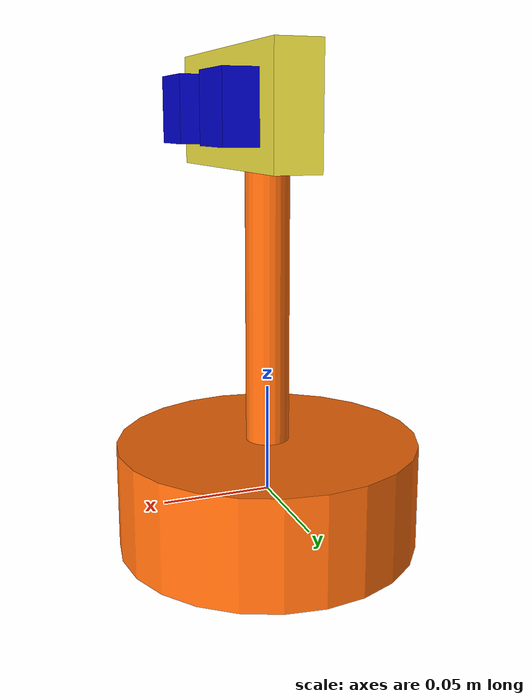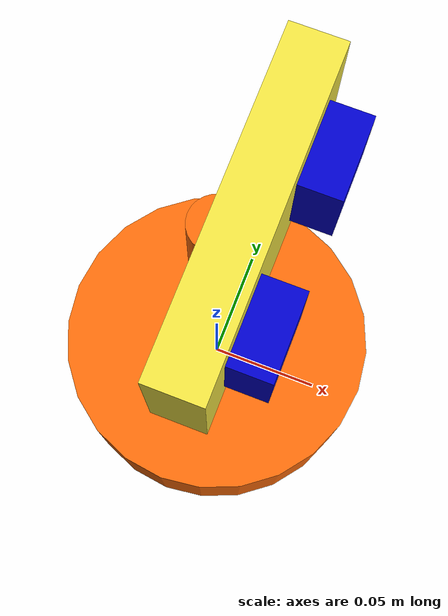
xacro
<?xml version="1.0"?>
<robot name="stereo_bot" xmlns:xacro="http://www.ros.org/wiki/xacro">
<xacro:include filename="$(find stereo_bot_description)/materials/materials.xacro" />
<xacro:include filename="$(find stereo_bot_description)/urdf/stereo_bot.gazebo" />
<xacro:include filename="$(find stereo_bot_description)/macros/macros.xacro" />

<xacro:property name="base_radius" value=".07"/>
<xacro:property name="base_height" value=".05"/>
<xacro:property name="base_mass" value="0.2"/>

<xacro:property name="neck_radius" value=".01"/>
<xacro:property name="neck_height" value=".15"/>
<xacro:property name="neck_mass" value=".1"/>

<xacro:property name="head_height" value=".05"/>
<xacro:property name="head_length" value="0.02"/>
<xacro:property name="head_width" value="0.12"/>
<xacro:property name="head_mass" value="0.2"/>

<xacro:property name="camera_size" value="0.03"/>
<xacro:property name="camera_mass" value="0.01"/>

<link name="base_link"/>

<joint name="base_joint" type="fixed">
	<parent link="base_link"/>
	<child link="base"/>
</joint>

<link name="base">
	<collision>
		<origin xyz="0 0 0" rpy="0 0 0"/>
		<geometry>
			<cylinder length="${base_height}" radius="${base_radius}"/>
		</geometry>
	</collision>

	<visual>
		<origin xyz="0 0 0" rpy="0 0 0"/>
		<geometry>
			<cylinder length="${base_height}" radius="${base_radius}"/>
		</geometry>
		<material name="orange"/>
	</visual>

	<inertial>
		<origin xyz="0 0 0" rpy="0 0 0"/>
		<mass value="${base_mass}"/>
		<cylinder_inertia m="${base_mass}" r="${base_radius}" h="${base_height}"/>
	</inertial>
</link>

<link name="neck">
	<collision>
		<origin xyz="0 0 0" rpy="0 0 0"/>
		<geometry>
			<cylinder length="${neck_height}" radius="${neck_radius}"/>
		</geometry>
	</collision>

	<visual>
		<origin xyz="0 0 0" rpy="0 0 0"/>
		<geometry>
			<cylinder length="${neck_height}" radius="${neck_radius}"/>
		</geometry>
		<material name="orange"/>
	</visual>

	<inertial>
		<origin xyz="0 0 0" rpy="0 0 0"/>
		<mass value="${neck_mass}"/>
		<cylinder_inertia m="${neck_mass}" r="${neck_radius}" h="${neck_height}"/>
	</inertial>
</link>

<link name="head">
	<collision>
		<origin xyz="0 0 0" rpy="0 0 0"/>
		<geometry>
			<box size="${head_length} ${head_width} ${head_height}"/>
		</geometry>
	</collision>

	<visual>
		<origin xyz="0 0 0" rpy="0 0 0"/>
		<geometry>
			<box size="${head_length} ${head_width} ${head_height}"/>
		</geometry>
	</visual>

	<inertial>
		<origin xyz="0 0 0" rpy="0 0 0"/>
		<mass value="${head_mass}"/>
		<box_inertia m="${head_mass}" x="${head_length}" y="${head_width}" z="${head_height}"/>
	</inertial>
</link>

<link name="camera_l">
	<collision>
		<origin xyz="0 0 0" rpy="0 0 0"/>
		<geometry>
			<box size="${camera_size} ${camera_size} ${camera_size}"/>
		</geometry>
	</collision>

	<visual>
		<origin xyz="0 0 0" rpy="0 0 0"/>
		<geometry>
			<box size="${camera_size} ${camera_size} ${camera_size}"/>
		</geometry>
		<material name="blue"/>
	</visual>

	<inertial>
		<origin xyz="0 0 0" rpy="0 0 0"/>
		<mass value="${camera_mass}"/>
		<box_inertia m="${camera_mass}" x="${camera_size}" y="${camera_size}" z="${camera_size}"/>
	</inertial>
</link>

<link name="camera_r">
	<collision>
		<origin xyz="0 0 0" rpy="0 0 0"/>
		<geometry>
			<box size="${camera_size} ${camera_size} ${camera_size}"/>
		</geometry>
	</collision>

	<visual>
		<origin xyz="0 0 0" rpy="0 0 0"/>
		<geometry>
			<box size="${camera_size} ${camera_size} ${camera_size}"/>
		</geometry>
		<material name="blue"/>
	</visual>

	<inertial>
		<origin xyz="0 0 0" rpy="0 0 0"/>
		<mass value="${camera_mass}"/>
		<box_inertia m="${camera_mass}" x="${camera_size}" y="${camera_size}" z="${camera_size}"/>
	</inertial>
</link>

<joint name="neck_to_base" type="revolute">
	<origin xyz="0 0 ${(neck_height+base_height)/2}" rpy="0 0 0"/>
	<parent link="base"/>
	<child link="neck"/>
	<axis xyz="0 0 1"/>
	<limit lower="-1.5707963" upper="1.5707963" effort="1000" velocity="1"/>
</joint>

<transmission name="transmission">
	<type>transmission_interface/SimpleTransmission</type>
	<joint name="neck_to_base">
		<hardwareInterface>PositionJointInterface</hardwareInterface>
	</joint>
	<actuator name="neck_actuator">
		<hardwareInterface>PositionJointInterface</hardwareInterface>
		<mechanicalReduction>1</mechanicalReduction>
	</actuator>
</transmission>

<joint name="head_to_neck" type="fixed">
	<origin xyz="${neck_radius} 0 ${neck_height/2}" rpy="0 0 0"/>
	<parent link="neck"/>
	<child link="head"/>
	<axis xyz="0 0 0"/>
</joint>

<joint name="camera_l_to_head" type="fixed">
	<origin xyz="${head_length/2} ${head_width/4} 0" rpy="0 0 0"/>
	<child link="camera_l"/>
	<parent link="head"/>
	<axis xyz="0 1 0"/>
</joint>

<joint name="camera_r_to_head" type="fixed">
	<origin xyz="${head_length/2} -${head_width/4} 0" rpy="0 0 0"/>
	<child link="camera_r"/>
	<parent link="head"/>
	<axis xyz="0 1 0"/>
</joint>

</robot>

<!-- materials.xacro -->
<robot>
	<material name="black">
		<color rgba="0.0 0.0 0.0 1.0"/>
	</material>

	<material name="blue">
		<color rgba="0.0 0.0 0.8 1.0"/>
	</material>

	<material name="green">
		<color rgba="0.0 0.8 0.0 1.0"/>
	</material>

	<material name="grey">
		<color rgba="0.2 0.2 0.2 1.0"/>
	</material>

	<material name="orange">
		<color rgba="${255/255} ${108/255} ${10/255} 1.0"/>
	</material>

	<material name="brown">
		<color rgba="${222/255} ${207/255} ${195/255} 1.0"/>
	</material>

	<material name="red">
		<color rgba="0.8 0.0 0.0 1.0"/>
	</material>

	<material name="white">
		<color rgba="1.0 1.0 1.0 1.0"/>
	</material>
</robot>

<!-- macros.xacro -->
<robot>
<macro name="cylinder_inertia" params="m r h">
  <inertia  ixx="${m*(3*r*r+h*h)/12}" ixy = "0" ixz = "0"
    iyy="${m*(3*r*r+h*h)/12}" iyz = "0"
    izz="${m*r*r/2}"
  />
</macro>

<macro name="box_inertia" params="m x y z">
  <inertia  ixx="${m*(y*y+z*z)/12}" ixy = "0" ixz = "0"
    iyy="${m*(x*x+z*z)/12}" iyz = "0"
    izz="${m*(x*x+z*z)/12}"
  />
</macro>

<macro name="sphere_inertia" params="m r">
  <inertia  ixx="${2*m*r*r/5}" ixy = "0" ixz = "0"
    iyy="${2*m*r*r/5}" iyz = "0"
    izz="${2*m*r*r/5}"
  />
</macro>
</robot>
